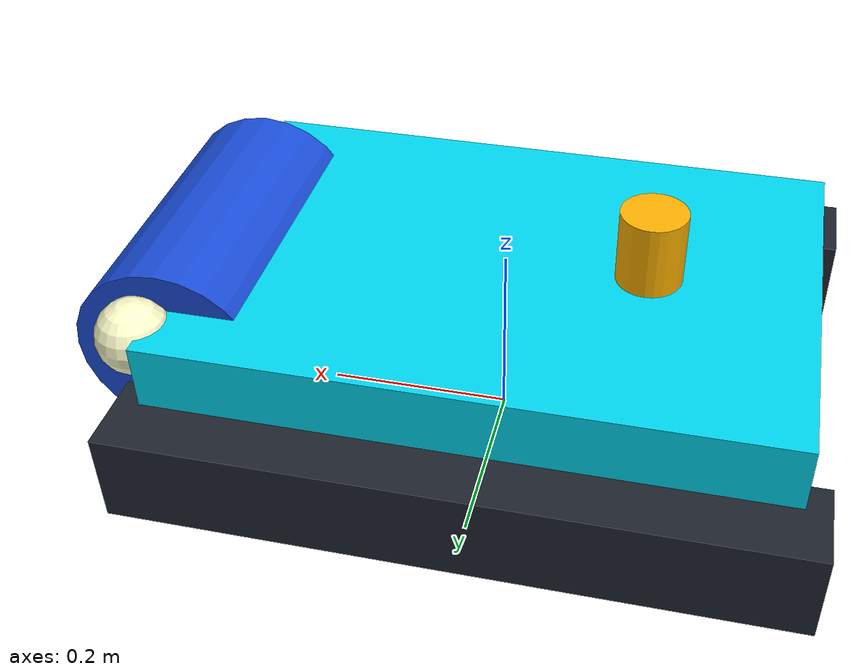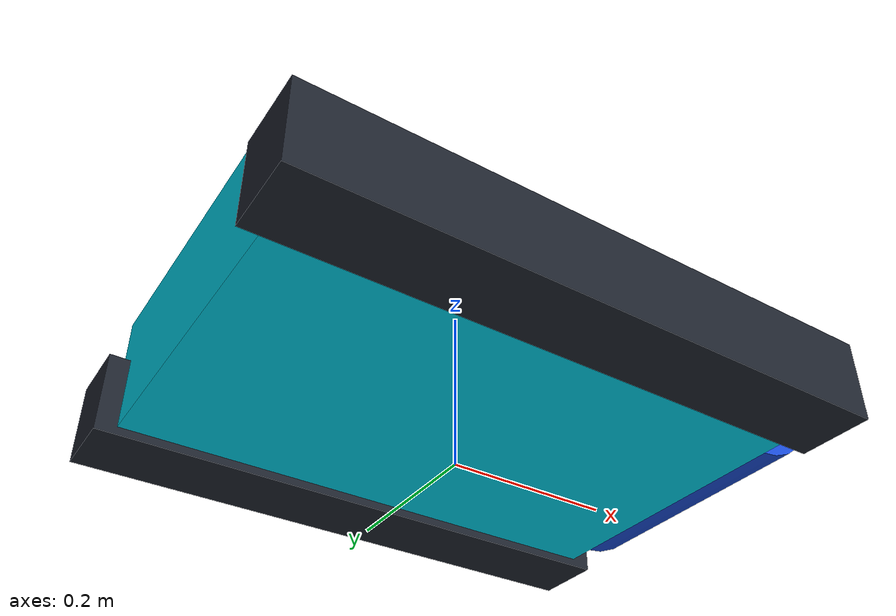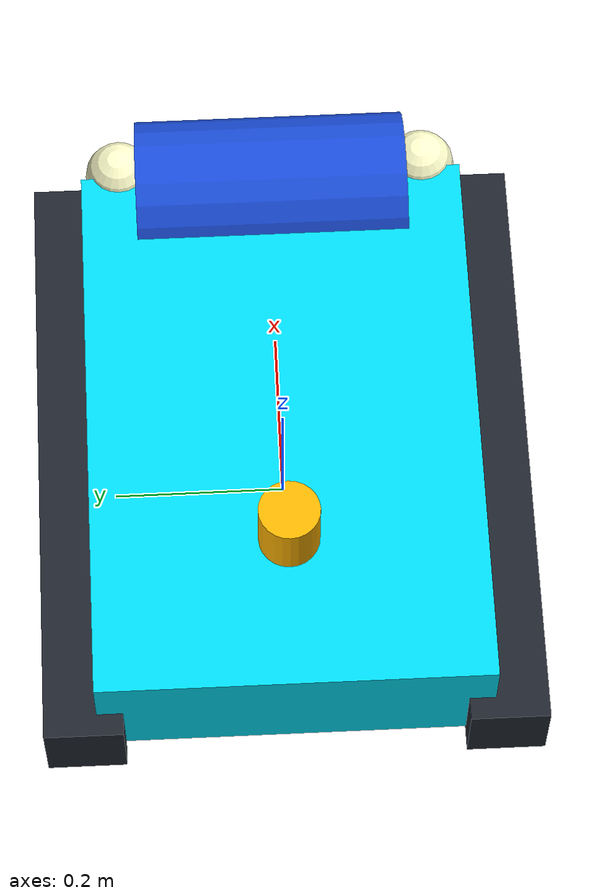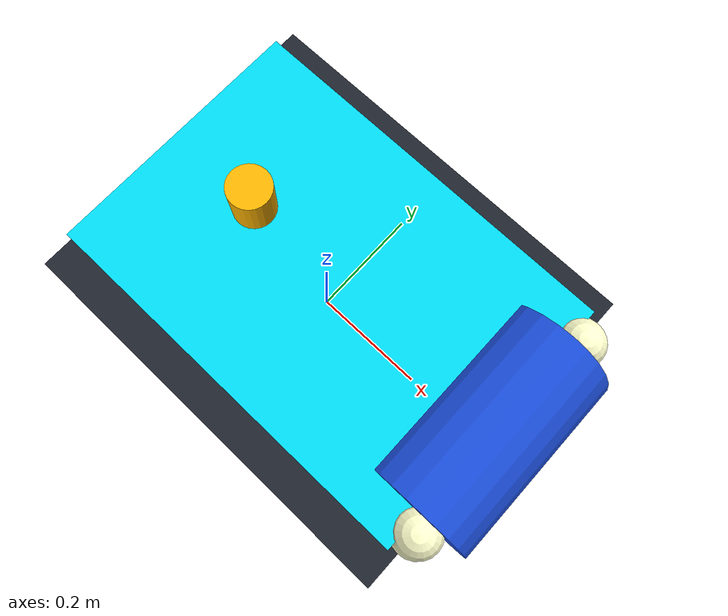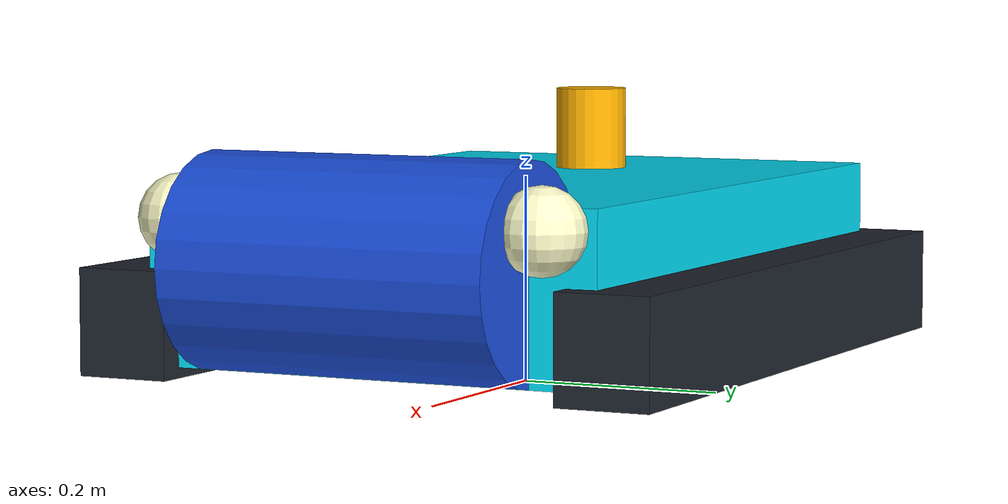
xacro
<?xml version="1.0"?>
<robot xmlns:xacro="http://www.ros.org/wiki/xacro" name="mapper_robot">

  <xacro:arg name="robot_name" default="mapper_1"/>
  <xacro:property name="name" value="$(arg robot_name)"/>

  <!-- Color Definitions -->
  <material name="mapper_cyan">
    <color rgba="0.0 0.85 0.95 1.0"/>
  </material>
  <material name="thruster_dark">
    <color rgba="0.12 0.14 0.18 1.0"/>
  </material>
  <material name="sensor_glass">
    <color rgba="0.1 0.3 0.85 0.9"/>
  </material>
  <material name="led_white">
    <color rgba="1.0 1.0 0.8 1.0"/>
  </material>
  <material name="beacon_amber">
    <color rgba="1.0 0.7 0.0 1.0"/>
  </material>

  <!-- Base Footprint on Hull Manifold Surface -->
  <link name="${name}/base_footprint"/>

  <joint name="${name}_base_joint" type="fixed">
    <parent link="${name}/base_footprint"/>
    <child link="${name}/base_link"/>
    <origin xyz="0 0 0.12" rpy="0 0 0"/>
  </joint>

  <!-- Main ROV Avionics & Hull Crawler Chassis (at least 0.6m in length) -->
  <link name="${name}/base_link">
    <visual>
      <geometry>
        <box size="0.65 0.45 0.16"/>
      </geometry>
      <material name="mapper_cyan"/>
    </visual>
    <collision>
      <geometry>
        <box size="0.65 0.45 0.16"/>
      </geometry>
    </collision>
    <inertial>
      <mass value="8.0"/>
      <inertia ixx="0.08" ixy="0.0" ixz="0.0" iyy="0.14" iyz="0.0" izz="0.18"/>
    </inertial>
  </link>

  <!-- Left Magnetic Adhesion Track / Nacelle -->
  <link name="${name}/left_track">
    <visual>
      <geometry>
        <box size="0.70 0.09 0.10"/>
      </geometry>
      <material name="thruster_dark"/>
    </visual>
    <collision>
      <geometry>
        <box size="0.70 0.09 0.10"/>
      </geometry>
    </collision>
    <inertial>
      <mass value="1.5"/>
      <inertia ixx="0.005" ixy="0" ixz="0" iyy="0.02" iyz="0" izz="0.02"/>
    </inertial>
  </link>
  <joint name="${name}_left_track_joint" type="fixed">
    <parent link="${name}/base_link"/>
    <child link="${name}/left_track"/>
    <origin xyz="0 0.24 -0.04" rpy="0 0 0"/>
  </joint>

  <!-- Right Magnetic Adhesion Track / Nacelle -->
  <link name="${name}/right_track">
    <visual>
      <geometry>
        <box size="0.70 0.09 0.10"/>
      </geometry>
      <material name="thruster_dark"/>
    </visual>
    <collision>
      <geometry>
        <box size="0.70 0.09 0.10"/>
      </geometry>
    </collision>
    <inertial>
      <mass value="1.5"/>
      <inertia ixx="0.005" ixy="0" ixz="0" iyy="0.02" iyz="0" izz="0.02"/>
    </inertial>
  </link>
  <joint name="${name}_right_track_joint" type="fixed">
    <parent link="${name}/base_link"/>
    <child link="${name}/right_track"/>
    <origin xyz="0 -0.24 -0.04" rpy="0 0 0"/>
  </joint>

  <!-- Front Inspection Sensor Pod (RGB-D + Stereo Baseline) -->
  <link name="${name}/sensor_pod">
    <visual>
      <geometry>
        <cylinder radius="0.10" length="0.32"/>
      </geometry>
      <material name="sensor_glass"/>
    </visual>
    <collision>
      <geometry>
        <cylinder radius="0.10" length="0.32"/>
      </geometry>
    </collision>
  </link>
  <joint name="${name}_sensor_pod_joint" type="fixed">
    <parent link="${name}/base_link"/>
    <child link="${name}/sensor_pod"/>
    <origin xyz="0.32 0 0.02" rpy="1.5707963 0 0"/>
  </joint>

  <!-- High-Intensity Inspection LED Illuminators -->
  <link name="${name}/led_left">
    <visual>
      <geometry>
        <sphere radius="0.04"/>
      </geometry>
      <material name="led_white"/>
    </visual>
  </link>
  <joint name="${name}_led_left_joint" type="fixed">
    <parent link="${name}/base_link"/>
    <child link="${name}/led_left"/>
    <origin xyz="0.34 0.18 0.06" rpy="0 0 0"/>
  </joint>

  <link name="${name}/led_right">
    <visual>
      <geometry>
        <sphere radius="0.04"/>
      </geometry>
      <material name="led_white"/>
    </visual>
  </link>
  <joint name="${name}_led_right_joint" type="fixed">
    <parent link="${name}/base_link"/>
    <child link="${name}/led_right"/>
    <origin xyz="0.34 -0.18 0.06" rpy="0 0 0"/>
  </joint>

  <!-- Top Status Beacon -->
  <link name="${name}/beacon">
    <visual>
      <geometry>
        <cylinder radius="0.035" length="0.08"/>
      </geometry>
      <material name="beacon_amber"/>
    </visual>
  </link>
  <joint name="${name}_beacon_joint" type="fixed">
    <parent link="${name}/base_link"/>
    <child link="${name}/beacon"/>
    <origin xyz="-0.15 0 0.12" rpy="0 0 0"/>
  </joint>

</robot>
